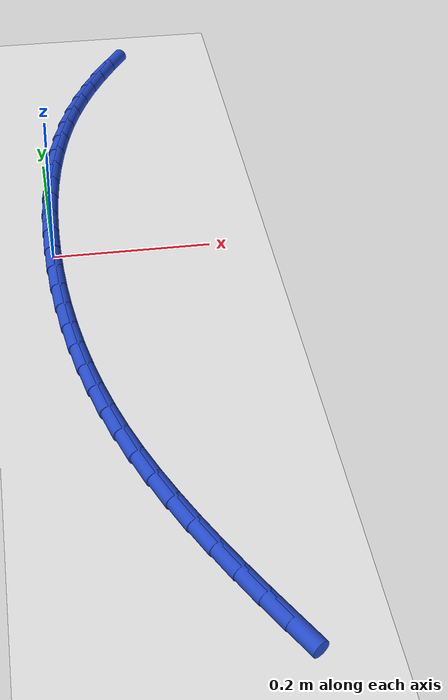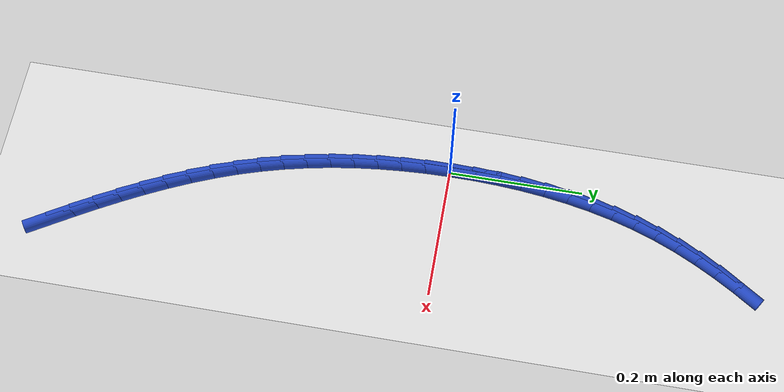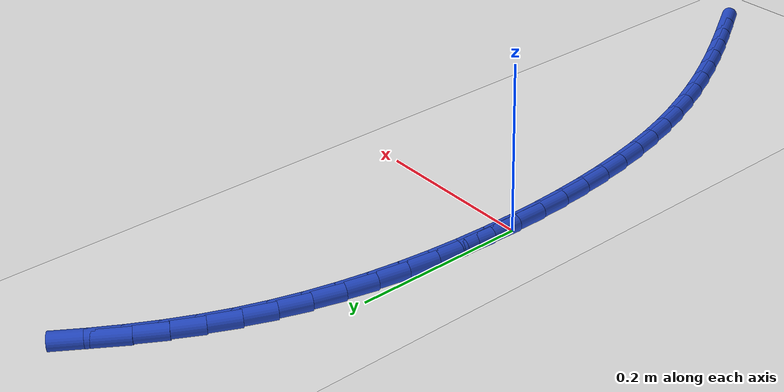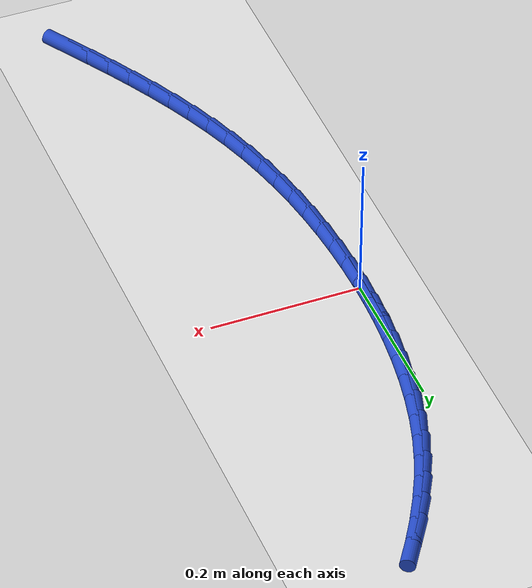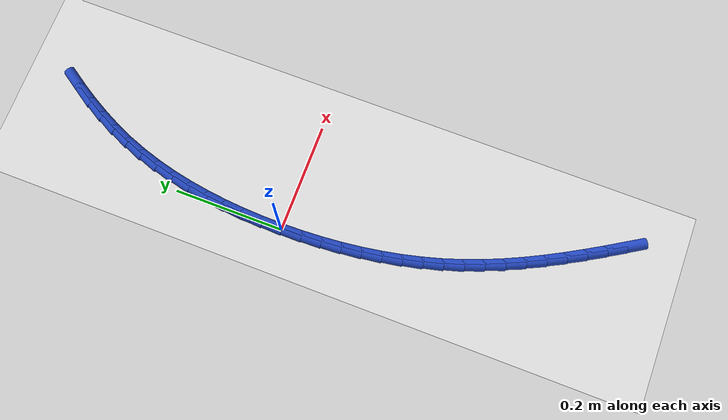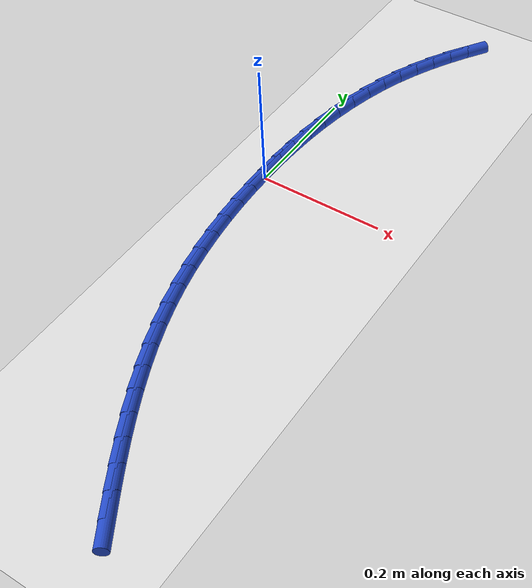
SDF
<sdf version="1.6">
 <world name="default">
  <model name="ground_plane">
   <static>1</static>
   <link name="link">
    <collision name="collision">
     <geometry><plane><normal>0 0 1</normal><size>100 100</size></plane></geometry>
     <surface><friction><ode><mu>100</mu><mu2>50</mu2></ode></friction></surface>
    </collision>
    <visual name="visual">
     <cast_shadows>0</cast_shadows>
     <geometry><plane><normal>0 0 1</normal><size>100 100</size></plane></geometry>
     <material>
      <script><uri>file://media/materials/scripts/gazebo.material</uri><name>Gazebo/WhiteGlow</name></script>
     </material>
    </visual>
   </link>
  </model>
  <model name="line">
   <link name="link_0">
    <pose>-7.806255641895632e-18 -2.0816681711721685e-17 0.01 0 1.57 1.5617731594145254</pose>
    <collision name="collision">
     <geometry><cylinder><radius>0.01</radius><length>0.08</length></cylinder></geometry>
    </collision>
    <visual name="visual">
     <material>
      <script><name>Gazebo/Blue</name><uri>file://media/materials/scripts/gazebo.material</uri></script>
     </material>
     <geometry><cylinder><radius>0.01</radius><length>0.08</length></cylinder></geometry>
    </visual>
   </link>
   <link name="link_1">
    <pose>0.00032744630038928474 0.036288522634327094 0.01 0 1.57 1.5296438946750772</pose>
    <collision name="collision">
     <geometry><cylinder><radius>0.01</radius><length>0.08</length></cylinder></geometry>
    </collision>
    <visual name="visual">
     <material>
      <script><name>Gazebo/Blue</name><uri>file://media/materials/scripts/gazebo.material</uri></script>
     </material>
     <geometry><cylinder><radius>0.01</radius><length>0.08</length></cylinder></geometry>
    </visual>
   </link>
   <link name="link_2">
    <pose>0.0018213691328073014 0.07257020343789236 0.01 0 1.57 1.495147037033412</pose>
    <collision name="collision">
     <geometry><cylinder><radius>0.01</radius><length>0.08</length></cylinder></geometry>
    </collision>
    <visual name="visual">
     <material>
      <script><name>Gazebo/Blue</name><uri>file://media/materials/scripts/gazebo.material</uri></script>
     </material>
     <geometry><cylinder><radius>0.01</radius><length>0.08</length></cylinder></geometry>
    </visual>
   </link>
   <link name="link_3">
    <pose>0.004561372115958199 0.10872089504526695 0.01 0 1.57 1.4580126303335292</pose>
    <collision name="collision">
     <geometry><cylinder><radius>0.01</radius><length>0.08</length></cylinder></geometry>
    </collision>
    <visual name="visual">
     <material>
      <script><name>Gazebo/Blue</name><uri>file://media/materials/scripts/gazebo.material</uri></script>
     </material>
     <geometry><cylinder><radius>0.01</radius><length>0.08</length></cylinder></geometry>
    </visual>
   </link>
   <link name="link_4">
    <pose>0.008627058868546134 0.14461645009102214 0.01 0 1.57 1.417956326805844</pose>
    <collision name="collision">
     <geometry><cylinder><radius>0.01</radius><length>0.08</length></cylinder></geometry>
    </collision>
    <visual name="visual">
     <material>
      <script><name>Gazebo/Blue</name><uri>file://media/materials/scripts/gazebo.material</uri></script>
     </material>
     <geometry><cylinder><radius>0.01</radius><length>0.08</length></cylinder></geometry>
    </visual>
   </link>
   <link name="link_5">
    <pose>0.01409803300927527 0.18013272120972912 0.01 0 1.57 1.3746836692512767</pose>
    <collision name="collision">
     <geometry><cylinder><radius>0.01</radius><length>0.08</length></cylinder></geometry>
    </collision>
    <visual name="visual">
     <material>
      <script><name>Gazebo/Blue</name><uri>file://media/materials/scripts/gazebo.material</uri></script>
     </material>
     <geometry><cylinder><radius>0.01</radius><length>0.08</length></cylinder></geometry>
    </visual>
   </link>
   <link name="link_6">
    <pose>0.02105389815684977 0.21514556103595936 0.01 0 1.57 1.3278977589456853</pose>
    <collision name="collision">
     <geometry><cylinder><radius>0.01</radius><length>0.08</length></cylinder></geometry>
    </collision>
    <visual name="visual">
     <material>
      <script><name>Gazebo/Blue</name><uri>file://media/materials/scripts/gazebo.material</uri></script>
     </material>
     <geometry><cylinder><radius>0.01</radius><length>0.08</length></cylinder></geometry>
    </visual>
   </link>
   <link name="link_7">
    <pose>0.0295742579299738 0.24953082220428402 0.01 0 1.57 1.2773114094710651</pose>
    <collision name="collision">
     <geometry><cylinder><radius>0.01</radius><length>0.08</length></cylinder></geometry>
    </collision>
    <visual name="visual">
     <material>
      <script><name>Gazebo/Blue</name><uri>file://media/materials/scripts/gazebo.material</uri></script>
     </material>
     <geometry><cylinder><radius>0.01</radius><length>0.08</length></cylinder></geometry>
    </visual>
   </link>
   <link name="link_8">
    <pose>0.039738715947351504 0.28316435734927425 0.01 0 1.57 1.2226780229586476</pose>
    <collision name="collision">
     <geometry><cylinder><radius>0.01</radius><length>0.08</length></cylinder></geometry>
    </collision>
    <visual name="visual">
     <material>
      <script><name>Gazebo/Blue</name><uri>file://media/materials/scripts/gazebo.material</uri></script>
     </material>
     <geometry><cylinder><radius>0.01</radius><length>0.08</length></cylinder></geometry>
    </visual>
   </link>
   <link name="link_9">
    <pose>0.05162652246071975 0.3159223826145671 0.01 0 1.57 1.1662294091827403</pose>
    <collision name="collision">
     <geometry><cylinder><radius>0.01</radius><length>0.08</length></cylinder></geometry>
    </collision>
    <visual name="visual">
     <material>
      <script><name>Gazebo/Blue</name><uri>file://media/materials/scripts/gazebo.material</uri></script>
     </material>
     <geometry><cylinder><radius>0.01</radius><length>0.08</length></cylinder></geometry>
    </visual>
   </link>
   <link name="link_10">
    <pose>0.06525324665883812 0.34774662293733566 0.01 0 1.57 1.113424842363254</pose>
    <collision name="collision">
     <geometry><cylinder><radius>0.01</radius><length>0.08</length></cylinder></geometry>
    </collision>
    <visual name="visual">
     <material>
      <script><name>Gazebo/Blue</name><uri>file://media/materials/scripts/gazebo.material</uri></script>
     </material>
     <geometry><cylinder><radius>0.01</radius><length>0.08</length></cylinder></geometry>
    </visual>
   </link>
   <link name="link_11">
    <pose>0.08049753287873879 0.37871965803044927 0.01 0 1.57 1.0654095106883927</pose>
    <collision name="collision">
     <geometry><cylinder><radius>0.01</radius><length>0.08</length></cylinder></geometry>
    </collision>
    <visual name="visual">
     <material>
      <script><name>Gazebo/Blue</name><uri>file://media/materials/scripts/gazebo.material</uri></script>
     </material>
     <geometry><cylinder><radius>0.01</radius><length>0.08</length></cylinder></geometry>
    </visual>
   </link>
   <link name="link_12">
    <pose>0.09722027224663352 0.4089423303581806 0.01 0 1.57 1.0225029665042582</pose>
    <collision name="collision">
     <geometry><cylinder><radius>0.01</radius><length>0.08</length></cylinder></geometry>
    </collision>
    <visual name="visual">
     <material>
      <script><name>Gazebo/Blue</name><uri>file://media/materials/scripts/gazebo.material</uri></script>
     </material>
     <geometry><cylinder><radius>0.01</radius><length>0.08</length></cylinder></geometry>
    </visual>
   </link>
   <link name="link_13">
    <pose>0.11528235588873408 0.4385154823848024 0.01 0 1.57 0.9848796700418869</pose>
    <collision name="collision">
     <geometry><cylinder><radius>0.01</radius><length>0.08</length></cylinder></geometry>
    </collision>
    <visual name="visual">
     <material>
      <script><name>Gazebo/Blue</name><uri>file://media/materials/scripts/gazebo.material</uri></script>
     </material>
     <geometry><cylinder><radius>0.01</radius><length>0.08</length></cylinder></geometry>
    </visual>
   </link>
   <link name="link_183">
    <pose>0.1800920360312539 -0.5703388116849458 0.01 0 1.57 -1.0221070253759326</pose>
    <collision name="collision">
     <geometry><cylinder><radius>0.01</radius><length>0.08</length></cylinder></geometry>
    </collision>
    <visual name="visual">
     <material>
      <script><name>Gazebo/Blue</name><uri>file://media/materials/scripts/gazebo.material</uri></script>
     </material>
     <geometry><cylinder><radius>0.01</radius><length>0.08</length></cylinder></geometry>
    </visual>
   </link>
   <link name="link_184">
    <pose>0.16138209282177082 -0.5397321651247962 0.01 0 1.57 -1.0372585075377885</pose>
    <collision name="collision">
     <geometry><cylinder><radius>0.01</radius><length>0.08</length></cylinder></geometry>
    </collision>
    <visual name="visual">
     <material>
      <script><name>Gazebo/Blue</name><uri>file://media/materials/scripts/gazebo.material</uri></script>
     </material>
     <geometry><cylinder><radius>0.01</radius><length>0.08</length></cylinder></geometry>
    </visual>
   </link>
   <link name="link_185">
    <pose>0.14314524927892827 -0.5088578056869593 0.01 0 1.57 -1.0562354091900348</pose>
    <collision name="collision">
     <geometry><cylinder><radius>0.01</radius><length>0.08</length></cylinder></geometry>
    </collision>
    <visual name="visual">
     <material>
      <script><name>Gazebo/Blue</name><uri>file://media/materials/scripts/gazebo.material</uri></script>
     </material>
     <geometry><cylinder><radius>0.01</radius><length>0.08</length></cylinder></geometry>
    </visual>
   </link>
   <link name="link_186">
    <pose>0.12552015884647255 -0.47768293047228666 0.01 0 1.57 -1.0791032029509429</pose>
    <collision name="collision">
     <geometry><cylinder><radius>0.01</radius><length>0.08</length></cylinder></geometry>
    </collision>
    <visual name="visual">
     <material>
      <script><name>Gazebo/Blue</name><uri>file://media/materials/scripts/gazebo.material</uri></script>
     </material>
     <geometry><cylinder><radius>0.01</radius><length>0.08</length></cylinder></geometry>
    </visual>
   </link>
   <link name="link_187">
    <pose>0.10864547496814994 -0.44617473658163004 0.01 0 1.57 -1.1059330264005556</pose>
    <collision name="collision">
     <geometry><cylinder><radius>0.01</radius><length>0.08</length></cylinder></geometry>
    </collision>
    <visual name="visual">
     <material>
      <script><name>Gazebo/Blue</name><uri>file://media/materials/scripts/gazebo.material</uri></script>
     </material>
     <geometry><cylinder><radius>0.01</radius><length>0.08</length></cylinder></geometry>
    </visual>
   </link>
   <link name="link_188">
    <pose>0.09265985108770675 -0.4143004211158408 0.01 0 1.57 -1.1367914649481965</pose>
    <collision name="collision">
     <geometry><cylinder><radius>0.01</radius><length>0.08</length></cylinder></geometry>
    </collision>
    <visual name="visual">
     <material>
      <script><name>Gazebo/Blue</name><uri>file://media/materials/scripts/gazebo.material</uri></script>
     </material>
     <geometry><cylinder><radius>0.01</radius><length>0.08</length></cylinder></geometry>
    </visual>
   </link>
   <link name="link_189">
    <pose>0.07770194064888933 -0.3820271811757708 0.01 0 1.57 -1.1717277906922643</pose>
    <collision name="collision">
     <geometry><cylinder><radius>0.01</radius><length>0.08</length></cylinder></geometry>
    </collision>
    <visual name="visual">
     <material>
      <script><name>Gazebo/Blue</name><uri>file://media/materials/scripts/gazebo.material</uri></script>
     </material>
     <geometry><cylinder><radius>0.01</radius><length>0.08</length></cylinder></geometry>
    </visual>
   </link>
   <link name="link_190">
    <pose>0.06391039709544395 -0.3493222138622713 0.01 0 1.57 -1.2107585722197496</pose>
    <collision name="collision">
     <geometry><cylinder><radius>0.01</radius><length>0.08</length></cylinder></geometry>
    </collision>
    <visual name="visual">
     <material>
      <script><name>Gazebo/Blue</name><uri>file://media/materials/scripts/gazebo.material</uri></script>
     </material>
     <geometry><cylinder><radius>0.01</radius><length>0.08</length></cylinder></geometry>
    </visual>
   </link>
   <link name="link_191">
    <pose>0.05142387387111694 -0.31615271627619407 0.01 0 1.57 -1.2533975401432458</pose>
    <collision name="collision">
     <geometry><cylinder><radius>0.01</radius><length>0.08</length></cylinder></geometry>
    </collision>
    <visual name="visual">
     <material>
      <script><name>Gazebo/Blue</name><uri>file://media/materials/scripts/gazebo.material</uri></script>
     </material>
     <geometry><cylinder><radius>0.01</radius><length>0.08</length></cylinder></geometry>
    </visual>
   </link>
   <link name="link_192">
    <pose>0.040366200513085856 -0.28249212345158337 0.01 0 1.57 -1.296079851500133</pose>
    <collision name="collision">
     <geometry><cylinder><radius>0.01</radius><length>0.08</length></cylinder></geometry>
    </collision>
    <visual name="visual">
     <material>
      <script><name>Gazebo/Blue</name><uri>file://media/materials/scripts/gazebo.material</uri></script>
     </material>
     <geometry><cylinder><radius>0.01</radius><length>0.08</length></cylinder></geometry>
    </visual>
   </link>
   <link name="link_193">
    <pose>0.030746874496033683 -0.24836198161127013 0.01 0 1.57 -1.3371328211126035</pose>
    <collision name="collision">
     <geometry><cylinder><radius>0.01</radius><length>0.08</length></cylinder></geometry>
    </collision>
    <visual name="visual">
     <material>
      <script><name>Gazebo/Blue</name><uri>file://media/materials/scripts/gazebo.material</uri></script>
     </material>
     <geometry><cylinder><radius>0.01</radius><length>0.08</length></cylinder></geometry>
    </visual>
   </link>
   <link name="link_194">
    <pose>0.02252221969481828 -0.21380621254836987 0.01 0 1.57 -1.376526854274869</pose>
    <collision name="collision">
     <geometry><cylinder><radius>0.01</radius><length>0.08</length></cylinder></geometry>
    </collision>
    <visual name="visual">
     <material>
      <script><name>Gazebo/Blue</name><uri>file://media/materials/scripts/gazebo.material</uri></script>
     </material>
     <geometry><cylinder><radius>0.01</radius><length>0.08</length></cylinder></geometry>
    </visual>
   </link>
   <link name="link_195">
    <pose>0.015648264923366434 -0.17886886221829948 0.01 0 1.57 -1.4142634010550976</pose>
    <collision name="collision">
     <geometry><cylinder><radius>0.01</radius><length>0.08</length></cylinder></geometry>
    </collision>
    <visual name="visual">
     <material>
      <script><name>Gazebo/Blue</name><uri>file://media/materials/scripts/gazebo.material</uri></script>
     </material>
     <geometry><cylinder><radius>0.01</radius><length>0.08</length></cylinder></geometry>
    </visual>
   </link>
   <link name="link_196">
    <pose>0.01008103899560501 -0.1435939765764764 0.01 0 1.57 -1.4503624583515626</pose>
    <collision name="collision">
     <geometry><cylinder><radius>0.01</radius><length>0.08</length></cylinder></geometry>
    </collision>
    <visual name="visual">
     <material>
      <script><name>Gazebo/Blue</name><uri>file://media/materials/scripts/gazebo.material</uri></script>
     </material>
     <geometry><cylinder><radius>0.01</radius><length>0.08</length></cylinder></geometry>
    </visual>
   </link>
   <link name="link_197">
    <pose>0.005776570725460825 -0.10802560157831775 0.01 0 1.57 -1.4848591572281324</pose>
    <collision name="collision">
     <geometry><cylinder><radius>0.01</radius><length>0.08</length></cylinder></geometry>
    </collision>
    <visual name="visual">
     <material>
      <script><name>Gazebo/Blue</name><uri>file://media/materials/scripts/gazebo.material</uri></script>
     </material>
     <geometry><cylinder><radius>0.01</radius><length>0.08</length></cylinder></geometry>
    </visual>
   </link>
   <link name="link_198">
    <pose>0.0026908889268607073 -0.07220778317924068 0.01 0 1.57 -1.5178005791246378</pose>
    <collision name="collision">
     <geometry><cylinder><radius>0.01</radius><length>0.08</length></cylinder></geometry>
    </collision>
    <visual name="visual">
     <material>
      <script><name>Gazebo/Blue</name><uri>file://media/materials/scripts/gazebo.material</uri></script>
     </material>
     <geometry><cylinder><radius>0.01</radius><length>0.08</length></cylinder></geometry>
    </visual>
   </link>
   <link name="link_199">
    <pose>0.0007800224137314905 -0.036184567334662424 0.01 0 1.57 -1.5492428944658343</pose>
    <collision name="collision">
     <geometry><cylinder><radius>0.01</radius><length>0.08</length></cylinder></geometry>
    </collision>
    <visual name="visual">
     <material>
      <script><name>Gazebo/Blue</name><uri>file://media/materials/scripts/gazebo.material</uri></script>
     </material>
     <geometry><cylinder><radius>0.01</radius><length>0.08</length></cylinder></geometry>
    </visual>
   </link>
   <link name="link_200">
    <pose>3.469446951953614e-18 -1.249000902703301e-16 0.01 0 1.57 1.562343782405071</pose>
    <collision name="collision">
     <geometry><cylinder><radius>0.01</radius><length>0.08</length></cylinder></geometry>
    </collision>
    <visual name="visual">
     <material>
      <script><name>Gazebo/Blue</name><uri>file://media/materials/scripts/gazebo.material</uri></script>
     </material>
     <geometry><cylinder><radius>0.01</radius><length>0.08</length></cylinder></geometry>
    </visual>
   </link>
   <link name="link_201">
    <pose>0.0003068504995930952 0.03630187286932978 0.01 0 1.57 1.5623437824050708</pose>
    <collision name="collision">
     <geometry><cylinder><radius>0.01</radius><length>0.08</length></cylinder></geometry>
    </collision>
    <visual name="visual">
     <material>
      <script><name>Gazebo/Blue</name><uri>file://media/materials/scripts/gazebo.material</uri></script>
     </material>
     <geometry><cylinder><radius>0.01</radius><length>0.08</length></cylinder></geometry>
    </visual>
   </link>
  </model>
 </world>
</sdf>
